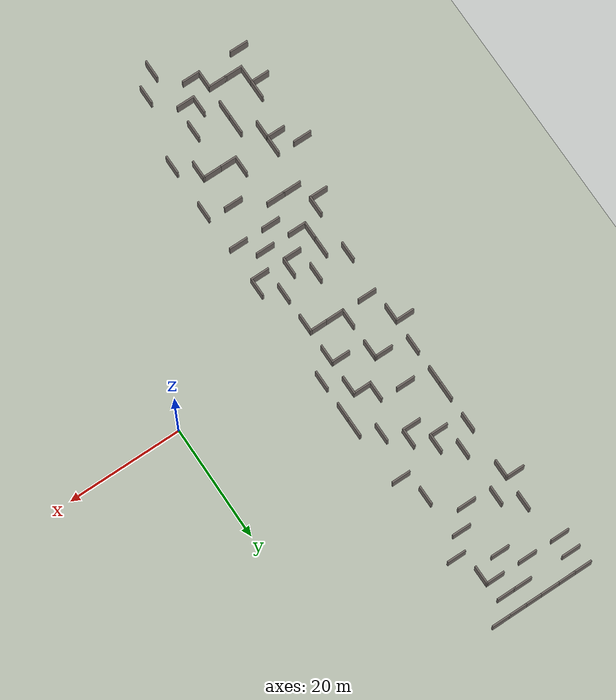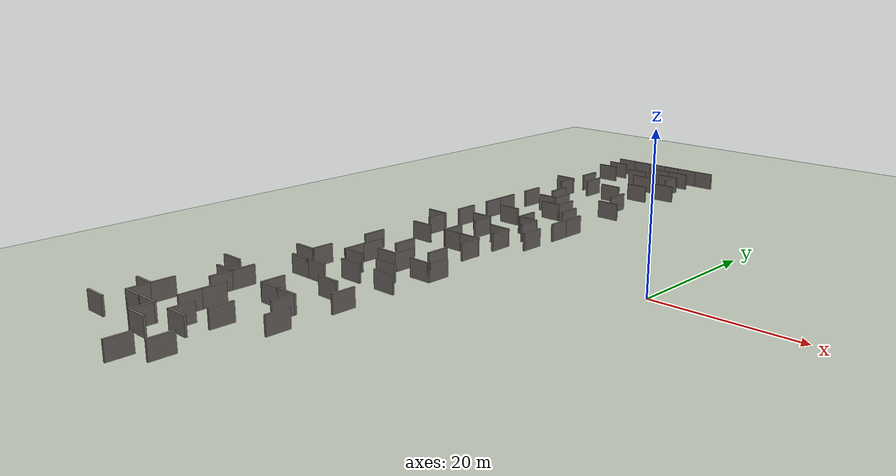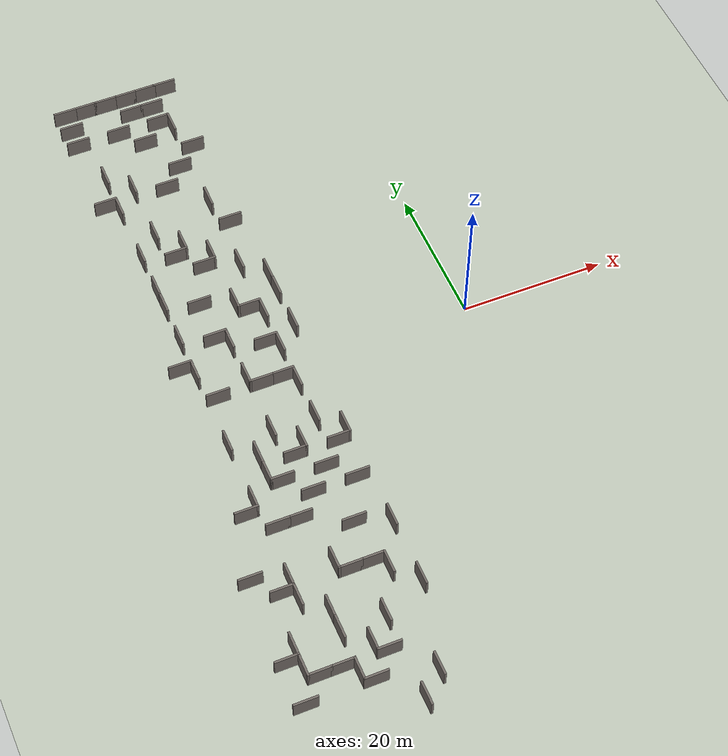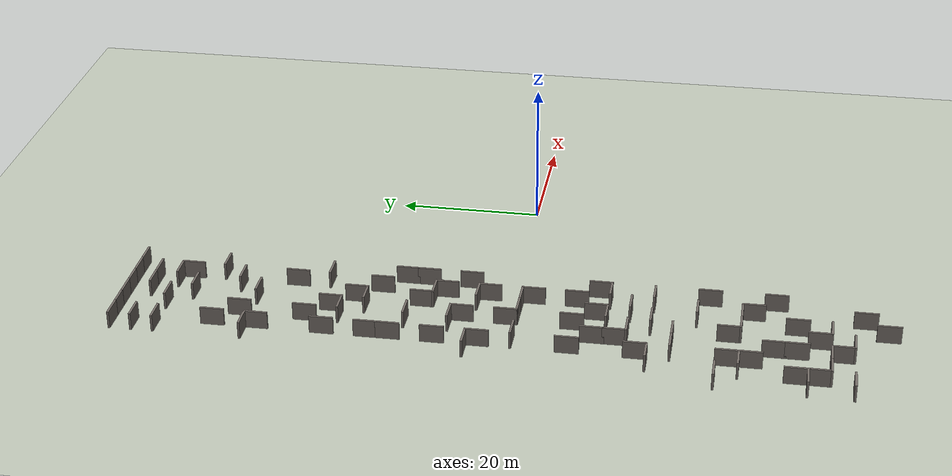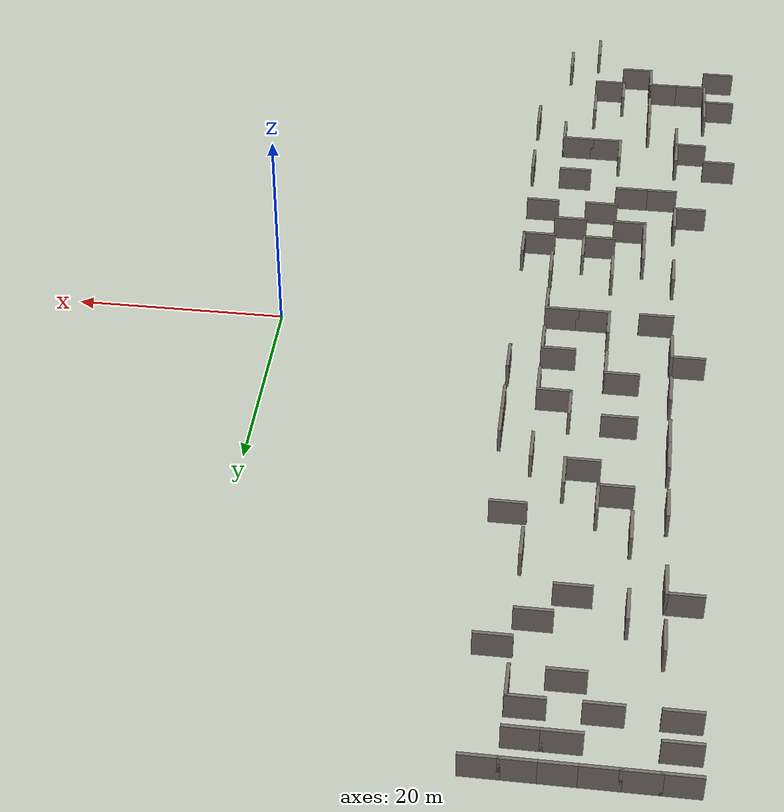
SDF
<sdf version="1.9">
 <world name="swap_world">
  <model name="ground_plane">
   <static>true</static>
   <link name="link">
    <collision name="collision">
     <geometry><plane><normal>0 0 1</normal><size>125 125</size></plane></geometry>
    </collision>
    <visual name="visual">
     <geometry><plane><normal>0 0 1</normal><size>125 125</size></plane></geometry>
     <material><ambient>0.75 0.78 0.72 1</ambient><diffuse>0.75 0.78 0.72 1</diffuse></material>
    </visual>
   </link>
  </model>
  <model name="wall_83">
   <static>true</static>
   <link name="l">
    <pose>-42.00 -28.50 1.25 0 0 0.0000</pose>
    <collision name="c"><geometry><box><size>3.30 0.3 2.5</size></box></geometry></collision>
    <visual name="v">
     <geometry><box><size>3.30 0.3 2.5</size></box></geometry>
     <material><ambient>0.45 0.42 0.4 1</ambient><diffuse>0.45 0.42 0.4 1</diffuse></material>
    </visual>
   </link>
  </model>
  <model name="wall_84">
   <static>true</static>
   <link name="l">
    <pose>-40.50 -39.00 1.25 0 0 1.5708</pose>
    <collision name="c"><geometry><box><size>3.30 0.3 2.5</size></box></geometry></collision>
    <visual name="v">
     <geometry><box><size>3.30 0.3 2.5</size></box></geometry>
     <material><ambient>0.45 0.42 0.4 1</ambient><diffuse>0.45 0.42 0.4 1</diffuse></material>
    </visual>
   </link>
  </model>
  <model name="wall_85">
   <static>true</static>
   <link name="l">
    <pose>-40.50 -42.00 1.25 0 0 1.5708</pose>
    <collision name="c"><geometry><box><size>3.30 0.3 2.5</size></box></geometry></collision>
    <visual name="v">
     <geometry><box><size>3.30 0.3 2.5</size></box></geometry>
     <material><ambient>0.45 0.42 0.4 1</ambient><diffuse>0.45 0.42 0.4 1</diffuse></material>
    </visual>
   </link>
  </model>
  <model name="wall_86">
   <static>true</static>
   <link name="l">
    <pose>-42.00 -40.50 1.25 0 0 0.0000</pose>
    <collision name="c"><geometry><box><size>3.30 0.3 2.5</size></box></geometry></collision>
    <visual name="v">
     <geometry><box><size>3.30 0.3 2.5</size></box></geometry>
     <material><ambient>0.45 0.42 0.4 1</ambient><diffuse>0.45 0.42 0.4 1</diffuse></material>
    </visual>
   </link>
  </model>
  <model name="wall_87">
   <static>true</static>
   <link name="l">
    <pose>-42.00 -46.50 1.25 0 0 0.0000</pose>
    <collision name="c"><geometry><box><size>3.30 0.3 2.5</size></box></geometry></collision>
    <visual name="v">
     <geometry><box><size>3.30 0.3 2.5</size></box></geometry>
     <material><ambient>0.45 0.42 0.4 1</ambient><diffuse>0.45 0.42 0.4 1</diffuse></material>
    </visual>
   </link>
  </model>
  <model name="wall_88">
   <static>true</static>
   <link name="l">
    <pose>-39.00 52.50 1.25 0 0 0.0000</pose>
    <collision name="c"><geometry><box><size>3.30 0.3 2.5</size></box></geometry></collision>
    <visual name="v">
     <geometry><box><size>3.30 0.3 2.5</size></box></geometry>
     <material><ambient>0.45 0.42 0.4 1</ambient><diffuse>0.45 0.42 0.4 1</diffuse></material>
    </visual>
   </link>
  </model>
  <model name="wall_89">
   <static>true</static>
   <link name="l">
    <pose>-39.00 49.50 1.25 0 0 0.0000</pose>
    <collision name="c"><geometry><box><size>3.30 0.3 2.5</size></box></geometry></collision>
    <visual name="v">
     <geometry><box><size>3.30 0.3 2.5</size></box></geometry>
     <material><ambient>0.45 0.42 0.4 1</ambient><diffuse>0.45 0.42 0.4 1</diffuse></material>
    </visual>
   </link>
  </model>
  <model name="wall_90">
   <static>true</static>
   <link name="l">
    <pose>-39.00 46.50 1.25 0 0 0.0000</pose>
    <collision name="c"><geometry><box><size>3.30 0.3 2.5</size></box></geometry></collision>
    <visual name="v">
     <geometry><box><size>3.30 0.3 2.5</size></box></geometry>
     <material><ambient>0.45 0.42 0.4 1</ambient><diffuse>0.45 0.42 0.4 1</diffuse></material>
    </visual>
   </link>
  </model>
  <model name="wall_91">
   <static>true</static>
   <link name="l">
    <pose>-37.50 39.00 1.25 0 0 1.5708</pose>
    <collision name="c"><geometry><box><size>3.30 0.3 2.5</size></box></geometry></collision>
    <visual name="v">
     <geometry><box><size>3.30 0.3 2.5</size></box></geometry>
     <material><ambient>0.45 0.42 0.4 1</ambient><diffuse>0.45 0.42 0.4 1</diffuse></material>
    </visual>
   </link>
  </model>
  <model name="wall_92">
   <static>true</static>
   <link name="l">
    <pose>-37.50 33.00 1.25 0 0 1.5708</pose>
    <collision name="c"><geometry><box><size>3.30 0.3 2.5</size></box></geometry></collision>
    <visual name="v">
     <geometry><box><size>3.30 0.3 2.5</size></box></geometry>
     <material><ambient>0.45 0.42 0.4 1</ambient><diffuse>0.45 0.42 0.4 1</diffuse></material>
    </visual>
   </link>
  </model>
  <model name="wall_93">
   <static>true</static>
   <link name="l">
    <pose>-39.00 34.50 1.25 0 0 0.0000</pose>
    <collision name="c"><geometry><box><size>3.30 0.3 2.5</size></box></geometry></collision>
    <visual name="v">
     <geometry><box><size>3.30 0.3 2.5</size></box></geometry>
     <material><ambient>0.45 0.42 0.4 1</ambient><diffuse>0.45 0.42 0.4 1</diffuse></material>
    </visual>
   </link>
  </model>
  <model name="wall_94">
   <static>true</static>
   <link name="l">
    <pose>-37.50 24.00 1.25 0 0 1.5708</pose>
    <collision name="c"><geometry><box><size>3.30 0.3 2.5</size></box></geometry></collision>
    <visual name="v">
     <geometry><box><size>3.30 0.3 2.5</size></box></geometry>
     <material><ambient>0.45 0.42 0.4 1</ambient><diffuse>0.45 0.42 0.4 1</diffuse></material>
    </visual>
   </link>
  </model>
  <model name="wall_95">
   <static>true</static>
   <link name="l">
    <pose>-37.50 18.00 1.25 0 0 1.5708</pose>
    <collision name="c"><geometry><box><size>3.30 0.3 2.5</size></box></geometry></collision>
    <visual name="v">
     <geometry><box><size>3.30 0.3 2.5</size></box></geometry>
     <material><ambient>0.45 0.42 0.4 1</ambient><diffuse>0.45 0.42 0.4 1</diffuse></material>
    </visual>
   </link>
  </model>
  <model name="wall_96">
   <static>true</static>
   <link name="l">
    <pose>-37.50 15.00 1.25 0 0 1.5708</pose>
    <collision name="c"><geometry><box><size>3.30 0.3 2.5</size></box></geometry></collision>
    <visual name="v">
     <geometry><box><size>3.30 0.3 2.5</size></box></geometry>
     <material><ambient>0.45 0.42 0.4 1</ambient><diffuse>0.45 0.42 0.4 1</diffuse></material>
    </visual>
   </link>
  </model>
  <model name="wall_97">
   <static>true</static>
   <link name="l">
    <pose>-37.50 9.00 1.25 0 0 1.5708</pose>
    <collision name="c"><geometry><box><size>3.30 0.3 2.5</size></box></geometry></collision>
    <visual name="v">
     <geometry><box><size>3.30 0.3 2.5</size></box></geometry>
     <material><ambient>0.45 0.42 0.4 1</ambient><diffuse>0.45 0.42 0.4 1</diffuse></material>
    </visual>
   </link>
  </model>
  <model name="wall_98">
   <static>true</static>
   <link name="l">
    <pose>-37.50 3.00 1.25 0 0 1.5708</pose>
    <collision name="c"><geometry><box><size>3.30 0.3 2.5</size></box></geometry></collision>
    <visual name="v">
     <geometry><box><size>3.30 0.3 2.5</size></box></geometry>
     <material><ambient>0.45 0.42 0.4 1</ambient><diffuse>0.45 0.42 0.4 1</diffuse></material>
    </visual>
   </link>
  </model>
  <model name="wall_99">
   <static>true</static>
   <link name="l">
    <pose>-39.00 4.50 1.25 0 0 0.0000</pose>
    <collision name="c"><geometry><box><size>3.30 0.3 2.5</size></box></geometry></collision>
    <visual name="v">
     <geometry><box><size>3.30 0.3 2.5</size></box></geometry>
     <material><ambient>0.45 0.42 0.4 1</ambient><diffuse>0.45 0.42 0.4 1</diffuse></material>
    </visual>
   </link>
  </model>
  <model name="wall_100">
   <static>true</static>
   <link name="l">
    <pose>-37.50 -9.00 1.25 0 0 1.5708</pose>
    <collision name="c"><geometry><box><size>3.30 0.3 2.5</size></box></geometry></collision>
    <visual name="v">
     <geometry><box><size>3.30 0.3 2.5</size></box></geometry>
     <material><ambient>0.45 0.42 0.4 1</ambient><diffuse>0.45 0.42 0.4 1</diffuse></material>
    </visual>
   </link>
  </model>
  <model name="wall_101">
   <static>true</static>
   <link name="l">
    <pose>-37.50 -18.00 1.25 0 0 1.5708</pose>
    <collision name="c"><geometry><box><size>3.30 0.3 2.5</size></box></geometry></collision>
    <visual name="v">
     <geometry><box><size>3.30 0.3 2.5</size></box></geometry>
     <material><ambient>0.45 0.42 0.4 1</ambient><diffuse>0.45 0.42 0.4 1</diffuse></material>
    </visual>
   </link>
  </model>
  <model name="wall_102">
   <static>true</static>
   <link name="l">
    <pose>-39.00 -19.50 1.25 0 0 0.0000</pose>
    <collision name="c"><geometry><box><size>3.30 0.3 2.5</size></box></geometry></collision>
    <visual name="v">
     <geometry><box><size>3.30 0.3 2.5</size></box></geometry>
     <material><ambient>0.45 0.42 0.4 1</ambient><diffuse>0.45 0.42 0.4 1</diffuse></material>
    </visual>
   </link>
  </model>
  <model name="wall_103">
   <static>true</static>
   <link name="l">
    <pose>-37.50 -30.00 1.25 0 0 1.5708</pose>
    <collision name="c"><geometry><box><size>3.30 0.3 2.5</size></box></geometry></collision>
    <visual name="v">
     <geometry><box><size>3.30 0.3 2.5</size></box></geometry>
     <material><ambient>0.45 0.42 0.4 1</ambient><diffuse>0.45 0.42 0.4 1</diffuse></material>
    </visual>
   </link>
  </model>
  <model name="wall_104">
   <static>true</static>
   <link name="l">
    <pose>-37.50 -33.00 1.25 0 0 1.5708</pose>
    <collision name="c"><geometry><box><size>3.30 0.3 2.5</size></box></geometry></collision>
    <visual name="v">
     <geometry><box><size>3.30 0.3 2.5</size></box></geometry>
     <material><ambient>0.45 0.42 0.4 1</ambient><diffuse>0.45 0.42 0.4 1</diffuse></material>
    </visual>
   </link>
  </model>
  <model name="wall_105">
   <static>true</static>
   <link name="l">
    <pose>-39.00 -31.50 1.25 0 0 0.0000</pose>
    <collision name="c"><geometry><box><size>3.30 0.3 2.5</size></box></geometry></collision>
    <visual name="v">
     <geometry><box><size>3.30 0.3 2.5</size></box></geometry>
     <material><ambient>0.45 0.42 0.4 1</ambient><diffuse>0.45 0.42 0.4 1</diffuse></material>
    </visual>
   </link>
  </model>
  <model name="wall_106">
   <static>true</static>
   <link name="l">
    <pose>-39.00 -43.50 1.25 0 0 0.0000</pose>
    <collision name="c"><geometry><box><size>3.30 0.3 2.5</size></box></geometry></collision>
    <visual name="v">
     <geometry><box><size>3.30 0.3 2.5</size></box></geometry>
     <material><ambient>0.45 0.42 0.4 1</ambient><diffuse>0.45 0.42 0.4 1</diffuse></material>
    </visual>
   </link>
  </model>
  <model name="wall_107">
   <static>true</static>
   <link name="l">
    <pose>-36.00 52.50 1.25 0 0 0.0000</pose>
    <collision name="c"><geometry><box><size>3.30 0.3 2.5</size></box></geometry></collision>
    <visual name="v">
     <geometry><box><size>3.30 0.3 2.5</size></box></geometry>
     <material><ambient>0.45 0.42 0.4 1</ambient><diffuse>0.45 0.42 0.4 1</diffuse></material>
    </visual>
   </link>
  </model>
  <model name="wall_108">
   <static>true</static>
   <link name="l">
    <pose>-34.50 36.00 1.25 0 0 1.5708</pose>
    <collision name="c"><geometry><box><size>3.30 0.3 2.5</size></box></geometry></collision>
    <visual name="v">
     <geometry><box><size>3.30 0.3 2.5</size></box></geometry>
     <material><ambient>0.45 0.42 0.4 1</ambient><diffuse>0.45 0.42 0.4 1</diffuse></material>
    </visual>
   </link>
  </model>
  <model name="wall_109">
   <static>true</static>
   <link name="l">
    <pose>-34.50 27.00 1.25 0 0 1.5708</pose>
    <collision name="c"><geometry><box><size>3.30 0.3 2.5</size></box></geometry></collision>
    <visual name="v">
     <geometry><box><size>3.30 0.3 2.5</size></box></geometry>
     <material><ambient>0.45 0.42 0.4 1</ambient><diffuse>0.45 0.42 0.4 1</diffuse></material>
    </visual>
   </link>
  </model>
  <model name="wall_110">
   <static>true</static>
   <link name="l">
    <pose>-36.00 -1.50 1.25 0 0 0.0000</pose>
    <collision name="c"><geometry><box><size>3.30 0.3 2.5</size></box></geometry></collision>
    <visual name="v">
     <geometry><box><size>3.30 0.3 2.5</size></box></geometry>
     <material><ambient>0.45 0.42 0.4 1</ambient><diffuse>0.45 0.42 0.4 1</diffuse></material>
    </visual>
   </link>
  </model>
  <model name="wall_111">
   <static>true</static>
   <link name="l">
    <pose>-34.50 -12.00 1.25 0 0 1.5708</pose>
    <collision name="c"><geometry><box><size>3.30 0.3 2.5</size></box></geometry></collision>
    <visual name="v">
     <geometry><box><size>3.30 0.3 2.5</size></box></geometry>
     <material><ambient>0.45 0.42 0.4 1</ambient><diffuse>0.45 0.42 0.4 1</diffuse></material>
    </visual>
   </link>
  </model>
  <model name="wall_112">
   <static>true</static>
   <link name="l">
    <pose>-34.50 -15.00 1.25 0 0 1.5708</pose>
    <collision name="c"><geometry><box><size>3.30 0.3 2.5</size></box></geometry></collision>
    <visual name="v">
     <geometry><box><size>3.30 0.3 2.5</size></box></geometry>
     <material><ambient>0.45 0.42 0.4 1</ambient><diffuse>0.45 0.42 0.4 1</diffuse></material>
    </visual>
   </link>
  </model>
  <model name="wall_113">
   <static>true</static>
   <link name="l">
    <pose>-36.00 -22.50 1.25 0 0 0.0000</pose>
    <collision name="c"><geometry><box><size>3.30 0.3 2.5</size></box></geometry></collision>
    <visual name="v">
     <geometry><box><size>3.30 0.3 2.5</size></box></geometry>
     <material><ambient>0.45 0.42 0.4 1</ambient><diffuse>0.45 0.42 0.4 1</diffuse></material>
    </visual>
   </link>
  </model>
  <model name="wall_114">
   <static>true</static>
   <link name="l">
    <pose>-34.50 -36.00 1.25 0 0 1.5708</pose>
    <collision name="c"><geometry><box><size>3.30 0.3 2.5</size></box></geometry></collision>
    <visual name="v">
     <geometry><box><size>3.30 0.3 2.5</size></box></geometry>
     <material><ambient>0.45 0.42 0.4 1</ambient><diffuse>0.45 0.42 0.4 1</diffuse></material>
    </visual>
   </link>
  </model>
  <model name="wall_115">
   <static>true</static>
   <link name="l">
    <pose>-34.50 -39.00 1.25 0 0 1.5708</pose>
    <collision name="c"><geometry><box><size>3.30 0.3 2.5</size></box></geometry></collision>
    <visual name="v">
     <geometry><box><size>3.30 0.3 2.5</size></box></geometry>
     <material><ambient>0.45 0.42 0.4 1</ambient><diffuse>0.45 0.42 0.4 1</diffuse></material>
    </visual>
   </link>
  </model>
  <model name="wall_116">
   <static>true</static>
   <link name="l">
    <pose>-34.50 -45.00 1.25 0 0 1.5708</pose>
    <collision name="c"><geometry><box><size>3.30 0.3 2.5</size></box></geometry></collision>
    <visual name="v">
     <geometry><box><size>3.30 0.3 2.5</size></box></geometry>
     <material><ambient>0.45 0.42 0.4 1</ambient><diffuse>0.45 0.42 0.4 1</diffuse></material>
    </visual>
   </link>
  </model>
  <model name="wall_117">
   <static>true</static>
   <link name="l">
    <pose>-36.00 -43.50 1.25 0 0 0.0000</pose>
    <collision name="c"><geometry><box><size>3.30 0.3 2.5</size></box></geometry></collision>
    <visual name="v">
     <geometry><box><size>3.30 0.3 2.5</size></box></geometry>
     <material><ambient>0.45 0.42 0.4 1</ambient><diffuse>0.45 0.42 0.4 1</diffuse></material>
    </visual>
   </link>
  </model>
  <model name="wall_118">
   <static>true</static>
   <link name="l">
    <pose>-33.00 52.50 1.25 0 0 0.0000</pose>
    <collision name="c"><geometry><box><size>3.30 0.3 2.5</size></box></geometry></collision>
    <visual name="v">
     <geometry><box><size>3.30 0.3 2.5</size></box></geometry>
     <material><ambient>0.45 0.42 0.4 1</ambient><diffuse>0.45 0.42 0.4 1</diffuse></material>
    </visual>
   </link>
  </model>
  <model name="wall_119">
   <static>true</static>
   <link name="l">
    <pose>-33.00 46.50 1.25 0 0 0.0000</pose>
    <collision name="c"><geometry><box><size>3.30 0.3 2.5</size></box></geometry></collision>
    <visual name="v">
     <geometry><box><size>3.30 0.3 2.5</size></box></geometry>
     <material><ambient>0.45 0.42 0.4 1</ambient><diffuse>0.45 0.42 0.4 1</diffuse></material>
    </visual>
   </link>
  </model>
  <model name="wall_120">
   <static>true</static>
   <link name="l">
    <pose>-31.50 24.00 1.25 0 0 1.5708</pose>
    <collision name="c"><geometry><box><size>3.30 0.3 2.5</size></box></geometry></collision>
    <visual name="v">
     <geometry><box><size>3.30 0.3 2.5</size></box></geometry>
     <material><ambient>0.45 0.42 0.4 1</ambient><diffuse>0.45 0.42 0.4 1</diffuse></material>
    </visual>
   </link>
  </model>
  <model name="wall_121">
   <static>true</static>
   <link name="l">
    <pose>-33.00 22.50 1.25 0 0 0.0000</pose>
    <collision name="c"><geometry><box><size>3.30 0.3 2.5</size></box></geometry></collision>
    <visual name="v">
     <geometry><box><size>3.30 0.3 2.5</size></box></geometry>
     <material><ambient>0.45 0.42 0.4 1</ambient><diffuse>0.45 0.42 0.4 1</diffuse></material>
    </visual>
   </link>
  </model>
  <model name="wall_122">
   <static>true</static>
   <link name="l">
    <pose>-33.00 13.50 1.25 0 0 0.0000</pose>
    <collision name="c"><geometry><box><size>3.30 0.3 2.5</size></box></geometry></collision>
    <visual name="v">
     <geometry><box><size>3.30 0.3 2.5</size></box></geometry>
     <material><ambient>0.45 0.42 0.4 1</ambient><diffuse>0.45 0.42 0.4 1</diffuse></material>
    </visual>
   </link>
  </model>
  <model name="wall_123">
   <static>true</static>
   <link name="l">
    <pose>-31.50 6.00 1.25 0 0 1.5708</pose>
    <collision name="c"><geometry><box><size>3.30 0.3 2.5</size></box></geometry></collision>
    <visual name="v">
     <geometry><box><size>3.30 0.3 2.5</size></box></geometry>
     <material><ambient>0.45 0.42 0.4 1</ambient><diffuse>0.45 0.42 0.4 1</diffuse></material>
    </visual>
   </link>
  </model>
  <model name="wall_124">
   <static>true</static>
   <link name="l">
    <pose>-33.00 7.50 1.25 0 0 0.0000</pose>
    <collision name="c"><geometry><box><size>3.30 0.3 2.5</size></box></geometry></collision>
    <visual name="v">
     <geometry><box><size>3.30 0.3 2.5</size></box></geometry>
     <material><ambient>0.45 0.42 0.4 1</ambient><diffuse>0.45 0.42 0.4 1</diffuse></material>
    </visual>
   </link>
  </model>
  <model name="wall_125">
   <static>true</static>
   <link name="l">
    <pose>-31.50 -0.00 1.25 0 0 1.5708</pose>
    <collision name="c"><geometry><box><size>3.30 0.3 2.5</size></box></geometry></collision>
    <visual name="v">
     <geometry><box><size>3.30 0.3 2.5</size></box></geometry>
     <material><ambient>0.45 0.42 0.4 1</ambient><diffuse>0.45 0.42 0.4 1</diffuse></material>
    </visual>
   </link>
  </model>
  <model name="wall_126">
   <static>true</static>
   <link name="l">
    <pose>-31.50 -9.00 1.25 0 0 1.5708</pose>
    <collision name="c"><geometry><box><size>3.30 0.3 2.5</size></box></geometry></collision>
    <visual name="v">
     <geometry><box><size>3.30 0.3 2.5</size></box></geometry>
     <material><ambient>0.45 0.42 0.4 1</ambient><diffuse>0.45 0.42 0.4 1</diffuse></material>
    </visual>
   </link>
  </model>
  <model name="wall_127">
   <static>true</static>
   <link name="l">
    <pose>-33.00 -16.50 1.25 0 0 0.0000</pose>
    <collision name="c"><geometry><box><size>3.30 0.3 2.5</size></box></geometry></collision>
    <visual name="v">
     <geometry><box><size>3.30 0.3 2.5</size></box></geometry>
     <material><ambient>0.45 0.42 0.4 1</ambient><diffuse>0.45 0.42 0.4 1</diffuse></material>
    </visual>
   </link>
  </model>
  <model name="wall_128">
   <static>true</static>
   <link name="l">
    <pose>-33.00 -22.50 1.25 0 0 0.0000</pose>
    <collision name="c"><geometry><box><size>3.30 0.3 2.5</size></box></geometry></collision>
    <visual name="v">
     <geometry><box><size>3.30 0.3 2.5</size></box></geometry>
     <material><ambient>0.45 0.42 0.4 1</ambient><diffuse>0.45 0.42 0.4 1</diffuse></material>
    </visual>
   </link>
  </model>
  <model name="wall_129">
   <static>true</static>
   <link name="l">
    <pose>-31.50 -30.00 1.25 0 0 1.5708</pose>
    <collision name="c"><geometry><box><size>3.30 0.3 2.5</size></box></geometry></collision>
    <visual name="v">
     <geometry><box><size>3.30 0.3 2.5</size></box></geometry>
     <material><ambient>0.45 0.42 0.4 1</ambient><diffuse>0.45 0.42 0.4 1</diffuse></material>
    </visual>
   </link>
  </model>
  <model name="wall_130">
   <static>true</static>
   <link name="l">
    <pose>-31.50 -42.00 1.25 0 0 1.5708</pose>
    <collision name="c"><geometry><box><size>3.30 0.3 2.5</size></box></geometry></collision>
    <visual name="v">
     <geometry><box><size>3.30 0.3 2.5</size></box></geometry>
     <material><ambient>0.45 0.42 0.4 1</ambient><diffuse>0.45 0.42 0.4 1</diffuse></material>
    </visual>
   </link>
  </model>
  <model name="wall_131">
   <static>true</static>
   <link name="l">
    <pose>-33.00 -46.50 1.25 0 0 0.0000</pose>
    <collision name="c"><geometry><box><size>3.30 0.3 2.5</size></box></geometry></collision>
    <visual name="v">
     <geometry><box><size>3.30 0.3 2.5</size></box></geometry>
     <material><ambient>0.45 0.42 0.4 1</ambient><diffuse>0.45 0.42 0.4 1</diffuse></material>
    </visual>
   </link>
  </model>
  <model name="wall_132">
   <static>true</static>
   <link name="l">
    <pose>-30.00 52.50 1.25 0 0 0.0000</pose>
    <collision name="c"><geometry><box><size>3.30 0.3 2.5</size></box></geometry></collision>
    <visual name="v">
     <geometry><box><size>3.30 0.3 2.5</size></box></geometry>
     <material><ambient>0.45 0.42 0.4 1</ambient><diffuse>0.45 0.42 0.4 1</diffuse></material>
    </visual>
   </link>
  </model>
  <model name="wall_133">
   <static>true</static>
   <link name="l">
    <pose>-30.00 49.50 1.25 0 0 0.0000</pose>
    <collision name="c"><geometry><box><size>3.30 0.3 2.5</size></box></geometry></collision>
    <visual name="v">
     <geometry><box><size>3.30 0.3 2.5</size></box></geometry>
     <material><ambient>0.45 0.42 0.4 1</ambient><diffuse>0.45 0.42 0.4 1</diffuse></material>
    </visual>
   </link>
  </model>
  <model name="wall_134">
   <static>true</static>
   <link name="l">
    <pose>-30.00 43.50 1.25 0 0 0.0000</pose>
    <collision name="c"><geometry><box><size>3.30 0.3 2.5</size></box></geometry></collision>
    <visual name="v">
     <geometry><box><size>3.30 0.3 2.5</size></box></geometry>
     <material><ambient>0.45 0.42 0.4 1</ambient><diffuse>0.45 0.42 0.4 1</diffuse></material>
    </visual>
   </link>
  </model>
  <model name="wall_135">
   <static>true</static>
   <link name="l">
    <pose>-30.00 34.50 1.25 0 0 0.0000</pose>
    <collision name="c"><geometry><box><size>3.30 0.3 2.5</size></box></geometry></collision>
    <visual name="v">
     <geometry><box><size>3.30 0.3 2.5</size></box></geometry>
     <material><ambient>0.45 0.42 0.4 1</ambient><diffuse>0.45 0.42 0.4 1</diffuse></material>
    </visual>
   </link>
  </model>
  <model name="wall_136">
   <static>true</static>
   <link name="l">
    <pose>-28.50 21.00 1.25 0 0 1.5708</pose>
    <collision name="c"><geometry><box><size>3.30 0.3 2.5</size></box></geometry></collision>
    <visual name="v">
     <geometry><box><size>3.30 0.3 2.5</size></box></geometry>
     <material><ambient>0.45 0.42 0.4 1</ambient><diffuse>0.45 0.42 0.4 1</diffuse></material>
    </visual>
   </link>
  </model>
  <model name="wall_137">
   <static>true</static>
   <link name="l">
    <pose>-30.00 19.50 1.25 0 0 0.0000</pose>
    <collision name="c"><geometry><box><size>3.30 0.3 2.5</size></box></geometry></collision>
    <visual name="v">
     <geometry><box><size>3.30 0.3 2.5</size></box></geometry>
     <material><ambient>0.45 0.42 0.4 1</ambient><diffuse>0.45 0.42 0.4 1</diffuse></material>
    </visual>
   </link>
  </model>
  <model name="wall_138">
   <static>true</static>
   <link name="l">
    <pose>-28.50 12.00 1.25 0 0 1.5708</pose>
    <collision name="c"><geometry><box><size>3.30 0.3 2.5</size></box></geometry></collision>
    <visual name="v">
     <geometry><box><size>3.30 0.3 2.5</size></box></geometry>
     <material><ambient>0.45 0.42 0.4 1</ambient><diffuse>0.45 0.42 0.4 1</diffuse></material>
    </visual>
   </link>
  </model>
  <model name="wall_139">
   <static>true</static>
   <link name="l">
    <pose>-30.00 -1.50 1.25 0 0 0.0000</pose>
    <collision name="c"><geometry><box><size>3.30 0.3 2.5</size></box></geometry></collision>
    <visual name="v">
     <geometry><box><size>3.30 0.3 2.5</size></box></geometry>
     <material><ambient>0.45 0.42 0.4 1</ambient><diffuse>0.45 0.42 0.4 1</diffuse></material>
    </visual>
   </link>
  </model>
  <model name="wall_140">
   <static>true</static>
   <link name="l">
    <pose>-28.50 -12.00 1.25 0 0 1.5708</pose>
    <collision name="c"><geometry><box><size>3.30 0.3 2.5</size></box></geometry></collision>
    <visual name="v">
     <geometry><box><size>3.30 0.3 2.5</size></box></geometry>
     <material><ambient>0.45 0.42 0.4 1</ambient><diffuse>0.45 0.42 0.4 1</diffuse></material>
    </visual>
   </link>
  </model>
  <model name="wall_141">
   <static>true</static>
   <link name="l">
    <pose>-30.00 -13.50 1.25 0 0 0.0000</pose>
    <collision name="c"><geometry><box><size>3.30 0.3 2.5</size></box></geometry></collision>
    <visual name="v">
     <geometry><box><size>3.30 0.3 2.5</size></box></geometry>
     <material><ambient>0.45 0.42 0.4 1</ambient><diffuse>0.45 0.42 0.4 1</diffuse></material>
    </visual>
   </link>
  </model>
  <model name="wall_142">
   <static>true</static>
   <link name="l">
    <pose>-30.00 -19.50 1.25 0 0 0.0000</pose>
    <collision name="c"><geometry><box><size>3.30 0.3 2.5</size></box></geometry></collision>
    <visual name="v">
     <geometry><box><size>3.30 0.3 2.5</size></box></geometry>
     <material><ambient>0.45 0.42 0.4 1</ambient><diffuse>0.45 0.42 0.4 1</diffuse></material>
    </visual>
   </link>
  </model>
  <model name="wall_143">
   <static>true</static>
   <link name="l">
    <pose>-30.00 -31.50 1.25 0 0 0.0000</pose>
    <collision name="c"><geometry><box><size>3.30 0.3 2.5</size></box></geometry></collision>
    <visual name="v">
     <geometry><box><size>3.30 0.3 2.5</size></box></geometry>
     <material><ambient>0.45 0.42 0.4 1</ambient><diffuse>0.45 0.42 0.4 1</diffuse></material>
    </visual>
   </link>
  </model>
  <model name="wall_144">
   <static>true</static>
   <link name="l">
    <pose>-28.50 -39.00 1.25 0 0 1.5708</pose>
    <collision name="c"><geometry><box><size>3.30 0.3 2.5</size></box></geometry></collision>
    <visual name="v">
     <geometry><box><size>3.30 0.3 2.5</size></box></geometry>
     <material><ambient>0.45 0.42 0.4 1</ambient><diffuse>0.45 0.42 0.4 1</diffuse></material>
    </visual>
   </link>
  </model>
  <model name="wall_145">
   <static>true</static>
   <link name="l">
    <pose>-30.00 -43.50 1.25 0 0 0.0000</pose>
    <collision name="c"><geometry><box><size>3.30 0.3 2.5</size></box></geometry></collision>
    <visual name="v">
     <geometry><box><size>3.30 0.3 2.5</size></box></geometry>
     <material><ambient>0.45 0.42 0.4 1</ambient><diffuse>0.45 0.42 0.4 1</diffuse></material>
    </visual>
   </link>
  </model>
  <model name="wall_146">
   <static>true</static>
   <link name="l">
    <pose>-28.50 -51.00 1.25 0 0 1.5708</pose>
    <collision name="c"><geometry><box><size>3.30 0.3 2.5</size></box></geometry></collision>
    <visual name="v">
     <geometry><box><size>3.30 0.3 2.5</size></box></geometry>
     <material><ambient>0.45 0.42 0.4 1</ambient><diffuse>0.45 0.42 0.4 1</diffuse></material>
    </visual>
   </link>
  </model>
  <model name="wall_147">
   <static>true</static>
   <link name="l">
    <pose>-27.00 52.50 1.25 0 0 0.0000</pose>
    <collision name="c"><geometry><box><size>3.30 0.3 2.5</size></box></geometry></collision>
    <visual name="v">
     <geometry><box><size>3.30 0.3 2.5</size></box></geometry>
     <material><ambient>0.45 0.42 0.4 1</ambient><diffuse>0.45 0.42 0.4 1</diffuse></material>
    </visual>
   </link>
  </model>
  <model name="wall_148">
   <static>true</static>
   <link name="l">
    <pose>-27.00 49.50 1.25 0 0 0.0000</pose>
    <collision name="c"><geometry><box><size>3.30 0.3 2.5</size></box></geometry></collision>
    <visual name="v">
     <geometry><box><size>3.30 0.3 2.5</size></box></geometry>
     <material><ambient>0.45 0.42 0.4 1</ambient><diffuse>0.45 0.42 0.4 1</diffuse></material>
    </visual>
   </link>
  </model>
  <model name="wall_149">
   <static>true</static>
   <link name="l">
    <pose>-25.50 45.00 1.25 0 0 1.5708</pose>
    <collision name="c"><geometry><box><size>3.30 0.3 2.5</size></box></geometry></collision>
    <visual name="v">
     <geometry><box><size>3.30 0.3 2.5</size></box></geometry>
     <material><ambient>0.45 0.42 0.4 1</ambient><diffuse>0.45 0.42 0.4 1</diffuse></material>
    </visual>
   </link>
  </model>
  <model name="wall_150">
   <static>true</static>
   <link name="l">
    <pose>-27.00 46.50 1.25 0 0 0.0000</pose>
    <collision name="c"><geometry><box><size>3.30 0.3 2.5</size></box></geometry></collision>
    <visual name="v">
     <geometry><box><size>3.30 0.3 2.5</size></box></geometry>
     <material><ambient>0.45 0.42 0.4 1</ambient><diffuse>0.45 0.42 0.4 1</diffuse></material>
    </visual>
   </link>
  </model>
  <model name="wall_151">
   <static>true</static>
   <link name="l">
    <pose>-27.00 37.50 1.25 0 0 0.0000</pose>
    <collision name="c"><geometry><box><size>3.30 0.3 2.5</size></box></geometry></collision>
    <visual name="v">
     <geometry><box><size>3.30 0.3 2.5</size></box></geometry>
     <material><ambient>0.45 0.42 0.4 1</ambient><diffuse>0.45 0.42 0.4 1</diffuse></material>
    </visual>
   </link>
  </model>
  <model name="wall_152">
   <static>true</static>
   <link name="l">
    <pose>-25.50 30.00 1.25 0 0 1.5708</pose>
    <collision name="c"><geometry><box><size>3.30 0.3 2.5</size></box></geometry></collision>
    <visual name="v">
     <geometry><box><size>3.30 0.3 2.5</size></box></geometry>
     <material><ambient>0.45 0.42 0.4 1</ambient><diffuse>0.45 0.42 0.4 1</diffuse></material>
    </visual>
   </link>
  </model>
  <model name="wall_153">
   <static>true</static>
   <link name="l">
    <pose>-25.50 18.00 1.25 0 0 1.5708</pose>
    <collision name="c"><geometry><box><size>3.30 0.3 2.5</size></box></geometry></collision>
    <visual name="v">
     <geometry><box><size>3.30 0.3 2.5</size></box></geometry>
     <material><ambient>0.45 0.42 0.4 1</ambient><diffuse>0.45 0.42 0.4 1</diffuse></material>
    </visual>
   </link>
  </model>
  <model name="wall_154">
   <static>true</static>
   <link name="l">
    <pose>-25.50 9.00 1.25 0 0 1.5708</pose>
    <collision name="c"><geometry><box><size>3.30 0.3 2.5</size></box></geometry></collision>
    <visual name="v">
     <geometry><box><size>3.30 0.3 2.5</size></box></geometry>
     <material><ambient>0.45 0.42 0.4 1</ambient><diffuse>0.45 0.42 0.4 1</diffuse></material>
    </visual>
   </link>
  </model>
  <model name="wall_155">
   <static>true</static>
   <link name="l">
    <pose>-27.00 10.50 1.25 0 0 0.0000</pose>
    <collision name="c"><geometry><box><size>3.30 0.3 2.5</size></box></geometry></collision>
    <visual name="v">
     <geometry><box><size>3.30 0.3 2.5</size></box></geometry>
     <material><ambient>0.45 0.42 0.4 1</ambient><diffuse>0.45 0.42 0.4 1</diffuse></material>
    </visual>
   </link>
  </model>
  <model name="wall_156">
   <static>true</static>
   <link name="l">
    <pose>-25.50 3.00 1.25 0 0 1.5708</pose>
    <collision name="c"><geometry><box><size>3.30 0.3 2.5</size></box></geometry></collision>
    <visual name="v">
     <geometry><box><size>3.30 0.3 2.5</size></box></geometry>
     <material><ambient>0.45 0.42 0.4 1</ambient><diffuse>0.45 0.42 0.4 1</diffuse></material>
    </visual>
   </link>
  </model>
  <model name="wall_157">
   <static>true</static>
   <link name="l">
    <pose>-27.00 4.50 1.25 0 0 0.0000</pose>
    <collision name="c"><geometry><box><size>3.30 0.3 2.5</size></box></geometry></collision>
    <visual name="v">
     <geometry><box><size>3.30 0.3 2.5</size></box></geometry>
     <material><ambient>0.45 0.42 0.4 1</ambient><diffuse>0.45 0.42 0.4 1</diffuse></material>
    </visual>
   </link>
  </model>
  <model name="wall_158">
   <static>true</static>
   <link name="l">
    <pose>-25.50 -3.00 1.25 0 0 1.5708</pose>
    <collision name="c"><geometry><box><size>3.30 0.3 2.5</size></box></geometry></collision>
    <visual name="v">
     <geometry><box><size>3.30 0.3 2.5</size></box></geometry>
     <material><ambient>0.45 0.42 0.4 1</ambient><diffuse>0.45 0.42 0.4 1</diffuse></material>
    </visual>
   </link>
  </model>
  <model name="wall_159">
   <static>true</static>
   <link name="l">
    <pose>-27.00 -1.50 1.25 0 0 0.0000</pose>
    <collision name="c"><geometry><box><size>3.30 0.3 2.5</size></box></geometry></collision>
    <visual name="v">
     <geometry><box><size>3.30 0.3 2.5</size></box></geometry>
     <material><ambient>0.45 0.42 0.4 1</ambient><diffuse>0.45 0.42 0.4 1</diffuse></material>
    </visual>
   </link>
  </model>
  <model name="wall_160">
   <static>true</static>
   <link name="l">
    <pose>-25.50 -9.00 1.25 0 0 1.5708</pose>
    <collision name="c"><geometry><box><size>3.30 0.3 2.5</size></box></geometry></collision>
    <visual name="v">
     <geometry><box><size>3.30 0.3 2.5</size></box></geometry>
     <material><ambient>0.45 0.42 0.4 1</ambient><diffuse>0.45 0.42 0.4 1</diffuse></material>
    </visual>
   </link>
  </model>
  <model name="wall_161">
   <static>true</static>
   <link name="l">
    <pose>-27.00 -16.50 1.25 0 0 0.0000</pose>
    <collision name="c"><geometry><box><size>3.30 0.3 2.5</size></box></geometry></collision>
    <visual name="v">
     <geometry><box><size>3.30 0.3 2.5</size></box></geometry>
     <material><ambient>0.45 0.42 0.4 1</ambient><diffuse>0.45 0.42 0.4 1</diffuse></material>
    </visual>
   </link>
  </model>
  <model name="wall_162">
   <static>true</static>
   <link name="l">
    <pose>-27.00 -25.50 1.25 0 0 0.0000</pose>
    <collision name="c"><geometry><box><size>3.30 0.3 2.5</size></box></geometry></collision>
    <visual name="v">
     <geometry><box><size>3.30 0.3 2.5</size></box></geometry>
     <material><ambient>0.45 0.42 0.4 1</ambient><diffuse>0.45 0.42 0.4 1</diffuse></material>
    </visual>
   </link>
  </model>
  <model name="wall_163">
   <static>true</static>
   <link name="l">
    <pose>-25.50 -33.00 1.25 0 0 1.5708</pose>
    <collision name="c"><geometry><box><size>3.30 0.3 2.5</size></box></geometry></collision>
    <visual name="v">
     <geometry><box><size>3.30 0.3 2.5</size></box></geometry>
     <material><ambient>0.45 0.42 0.4 1</ambient><diffuse>0.45 0.42 0.4 1</diffuse></material>
    </visual>
   </link>
  </model>
  <model name="wall_164">
   <static>true</static>
   <link name="l">
    <pose>-27.00 -31.50 1.25 0 0 0.0000</pose>
    <collision name="c"><geometry><box><size>3.30 0.3 2.5</size></box></geometry></collision>
    <visual name="v">
     <geometry><box><size>3.30 0.3 2.5</size></box></geometry>
     <material><ambient>0.45 0.42 0.4 1</ambient><diffuse>0.45 0.42 0.4 1</diffuse></material>
    </visual>
   </link>
  </model>
  <model name="wall_165">
   <static>true</static>
   <link name="l">
    <pose>-25.50 -48.00 1.25 0 0 1.5708</pose>
    <collision name="c"><geometry><box><size>3.30 0.3 2.5</size></box></geometry></collision>
    <visual name="v">
     <geometry><box><size>3.30 0.3 2.5</size></box></geometry>
     <material><ambient>0.45 0.42 0.4 1</ambient><diffuse>0.45 0.42 0.4 1</diffuse></material>
    </visual>
   </link>
  </model>
  <model name="wall_166">
   <static>true</static>
   <link name="l">
    <pose>-24.00 52.50 1.25 0 0 0.0000</pose>
    <collision name="c"><geometry><box><size>3.30 0.3 2.5</size></box></geometry></collision>
    <visual name="v">
     <geometry><box><size>3.30 0.3 2.5</size></box></geometry>
     <material><ambient>0.45 0.42 0.4 1</ambient><diffuse>0.45 0.42 0.4 1</diffuse></material>
    </visual>
   </link>
  </model>
  <model name="wall_167">
   <static>true</static>
   <link name="l">
    <pose>-24.00 40.50 1.25 0 0 0.0000</pose>
    <collision name="c"><geometry><box><size>3.30 0.3 2.5</size></box></geometry></collision>
    <visual name="v">
     <geometry><box><size>3.30 0.3 2.5</size></box></geometry>
     <material><ambient>0.45 0.42 0.4 1</ambient><diffuse>0.45 0.42 0.4 1</diffuse></material>
    </visual>
   </link>
  </model>
  <model name="wall_168">
   <static>true</static>
   <link name="l">
    <pose>-24.00 25.50 1.25 0 0 0.0000</pose>
    <collision name="c"><geometry><box><size>3.30 0.3 2.5</size></box></geometry></collision>
    <visual name="v">
     <geometry><box><size>3.30 0.3 2.5</size></box></geometry>
     <material><ambient>0.45 0.42 0.4 1</ambient><diffuse>0.45 0.42 0.4 1</diffuse></material>
    </visual>
   </link>
  </model>
  <model name="wall_169">
   <static>true</static>
   <link name="l">
    <pose>-22.50 15.00 1.25 0 0 1.5708</pose>
    <collision name="c"><geometry><box><size>3.30 0.3 2.5</size></box></geometry></collision>
    <visual name="v">
     <geometry><box><size>3.30 0.3 2.5</size></box></geometry>
     <material><ambient>0.45 0.42 0.4 1</ambient><diffuse>0.45 0.42 0.4 1</diffuse></material>
    </visual>
   </link>
  </model>
  <model name="wall_170">
   <static>true</static>
   <link name="l">
    <pose>-22.50 12.00 1.25 0 0 1.5708</pose>
    <collision name="c"><geometry><box><size>3.30 0.3 2.5</size></box></geometry></collision>
    <visual name="v">
     <geometry><box><size>3.30 0.3 2.5</size></box></geometry>
     <material><ambient>0.45 0.42 0.4 1</ambient><diffuse>0.45 0.42 0.4 1</diffuse></material>
    </visual>
   </link>
  </model>
  <model name="wall_171">
   <static>true</static>
   <link name="l">
    <pose>-22.50 6.00 1.25 0 0 1.5708</pose>
    <collision name="c"><geometry><box><size>3.30 0.3 2.5</size></box></geometry></collision>
    <visual name="v">
     <geometry><box><size>3.30 0.3 2.5</size></box></geometry>
     <material><ambient>0.45 0.42 0.4 1</ambient><diffuse>0.45 0.42 0.4 1</diffuse></material>
    </visual>
   </link>
  </model>
  <model name="wall_172">
   <static>true</static>
   <link name="l">
    <pose>-22.50 -12.00 1.25 0 0 1.5708</pose>
    <collision name="c"><geometry><box><size>3.30 0.3 2.5</size></box></geometry></collision>
    <visual name="v">
     <geometry><box><size>3.30 0.3 2.5</size></box></geometry>
     <material><ambient>0.45 0.42 0.4 1</ambient><diffuse>0.45 0.42 0.4 1</diffuse></material>
    </visual>
   </link>
  </model>
  <model name="wall_173">
   <static>true</static>
   <link name="l">
    <pose>-24.00 -13.50 1.25 0 0 0.0000</pose>
    <collision name="c"><geometry><box><size>3.30 0.3 2.5</size></box></geometry></collision>
    <visual name="v">
     <geometry><box><size>3.30 0.3 2.5</size></box></geometry>
     <material><ambient>0.45 0.42 0.4 1</ambient><diffuse>0.45 0.42 0.4 1</diffuse></material>
    </visual>
   </link>
  </model>
  <model name="wall_174">
   <static>true</static>
   <link name="l">
    <pose>-24.00 -19.50 1.25 0 0 0.0000</pose>
    <collision name="c"><geometry><box><size>3.30 0.3 2.5</size></box></geometry></collision>
    <visual name="v">
     <geometry><box><size>3.30 0.3 2.5</size></box></geometry>
     <material><ambient>0.45 0.42 0.4 1</ambient><diffuse>0.45 0.42 0.4 1</diffuse></material>
    </visual>
   </link>
  </model>
  <model name="wall_175">
   <static>true</static>
   <link name="l">
    <pose>-22.50 -27.00 1.25 0 0 1.5708</pose>
    <collision name="c"><geometry><box><size>3.30 0.3 2.5</size></box></geometry></collision>
    <visual name="v">
     <geometry><box><size>3.30 0.3 2.5</size></box></geometry>
     <material><ambient>0.45 0.42 0.4 1</ambient><diffuse>0.45 0.42 0.4 1</diffuse></material>
    </visual>
   </link>
  </model>
  <model name="wall_176">
   <static>true</static>
   <link name="l">
    <pose>-22.50 -36.00 1.25 0 0 1.5708</pose>
    <collision name="c"><geometry><box><size>3.30 0.3 2.5</size></box></geometry></collision>
    <visual name="v">
     <geometry><box><size>3.30 0.3 2.5</size></box></geometry>
     <material><ambient>0.45 0.42 0.4 1</ambient><diffuse>0.45 0.42 0.4 1</diffuse></material>
    </visual>
   </link>
  </model>
 </world>
</sdf>
